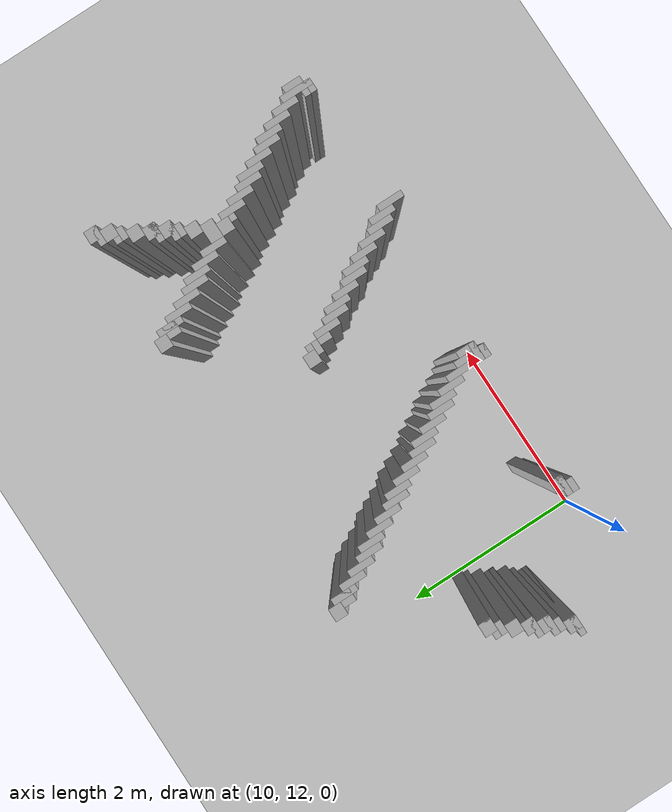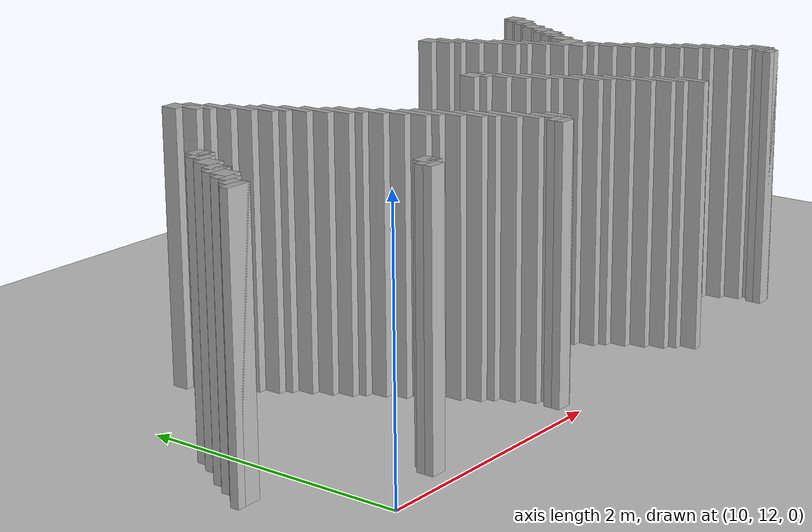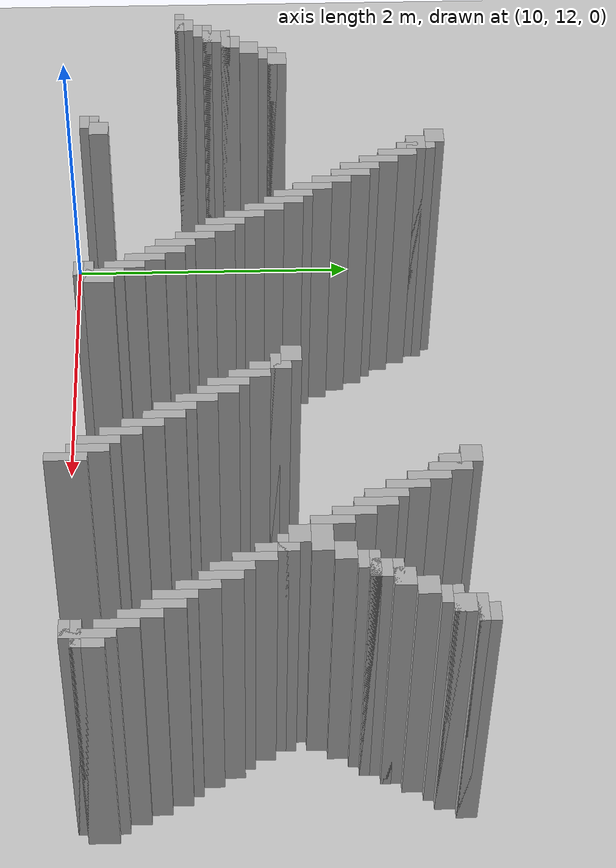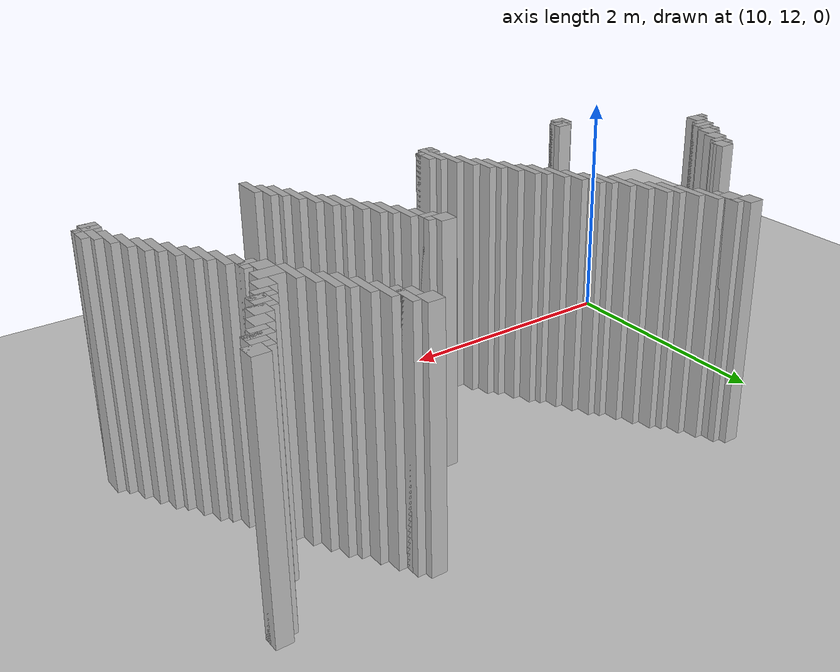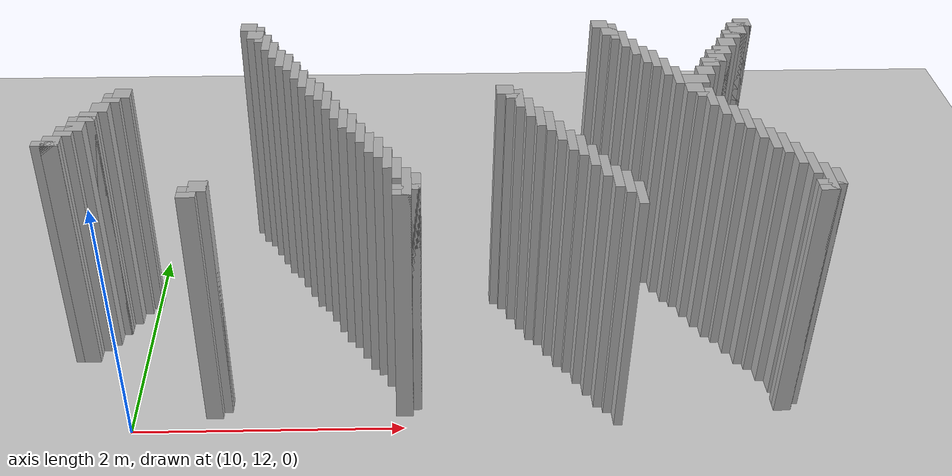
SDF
<sdf version="1.6">
 <world name="slam_world">
  <model name="ground_plane">
   <static>true</static>
   <link name="link">
    <collision name="collision">
     <geometry><plane><normal>0 0 1</normal><size>100 100</size></plane></geometry>
    </collision>
    <visual name="visual">
     <geometry><plane><normal>0 0 1</normal><size>100 100</size></plane></geometry>
     <material>
      <ambient>0.8 0.8 0.8 1</ambient>
      <diffuse>0.8 0.8 0.8 1</diffuse>
      <specular>0.8 0.8 0.8 1</specular>
     </material>
    </visual>
   </link>
  </model>
  <model name="wall_927">
   <static>true</static>
   <pose>10.787234042553191 14.489361702127658 1.0 0 0 0</pose>
   <link name="link">
    <collision name="collision">
     <geometry><box><size>0.1276595744680851 0.1276595744680851 2.0</size></box></geometry>
    </collision>
    <visual name="visual">
     <geometry><box><size>0.1276595744680851 0.1276595744680851 2.0</size></box></geometry>
     <material><ambient>0.5 0.5 0.5 1</ambient><diffuse>0.7 0.7 0.7 1</diffuse></material>
    </visual>
   </link>
  </model>
  <model name="wall_928">
   <static>true</static>
   <pose>13.595744680851062 14.489361702127658 1.0 0 0 0</pose>
   <link name="link">
    <collision name="collision">
     <geometry><box><size>0.1276595744680851 0.1276595744680851 2.0</size></box></geometry>
    </collision>
    <visual name="visual">
     <geometry><box><size>0.1276595744680851 0.1276595744680851 2.0</size></box></geometry>
     <material><ambient>0.5 0.5 0.5 1</ambient><diffuse>0.7 0.7 0.7 1</diffuse></material>
    </visual>
   </link>
  </model>
  <model name="wall_929">
   <static>true</static>
   <pose>14.744680851063828 14.489361702127658 1.0 0 0 0</pose>
   <link name="link">
    <collision name="collision">
     <geometry><box><size>0.1276595744680851 0.1276595744680851 2.0</size></box></geometry>
    </collision>
    <visual name="visual">
     <geometry><box><size>0.1276595744680851 0.1276595744680851 2.0</size></box></geometry>
     <material><ambient>0.5 0.5 0.5 1</ambient><diffuse>0.7 0.7 0.7 1</diffuse></material>
    </visual>
   </link>
  </model>
  <model name="wall_934">
   <static>true</static>
   <pose>10.882978723404255 14.361702127659573 1.0 0 0 0</pose>
   <link name="link">
    <collision name="collision">
     <geometry><box><size>0.06382978723404255 0.2553191489361702 2.0</size></box></geometry>
    </collision>
    <visual name="visual">
     <geometry><box><size>0.06382978723404255 0.2553191489361702 2.0</size></box></geometry>
     <material><ambient>0.5 0.5 0.5 1</ambient><diffuse>0.7 0.7 0.7 1</diffuse></material>
    </visual>
   </link>
  </model>
  <model name="wall_935">
   <static>true</static>
   <pose>13.691489361702127 14.361702127659573 1.0 0 0 0</pose>
   <link name="link">
    <collision name="collision">
     <geometry><box><size>0.06382978723404255 0.2553191489361702 2.0</size></box></geometry>
    </collision>
    <visual name="visual">
     <geometry><box><size>0.06382978723404255 0.2553191489361702 2.0</size></box></geometry>
     <material><ambient>0.5 0.5 0.5 1</ambient><diffuse>0.7 0.7 0.7 1</diffuse></material>
    </visual>
   </link>
  </model>
  <model name="wall_936">
   <static>true</static>
   <pose>14.712765957446807 14.457446808510637 1.0 0 0 0</pose>
   <link name="link">
    <collision name="collision">
     <geometry><box><size>0.19148936170212766 0.06382978723404255 2.0</size></box></geometry>
    </collision>
    <visual name="visual">
     <geometry><box><size>0.19148936170212766 0.06382978723404255 2.0</size></box></geometry>
     <material><ambient>0.5 0.5 0.5 1</ambient><diffuse>0.7 0.7 0.7 1</diffuse></material>
    </visual>
   </link>
  </model>
  <model name="wall_941">
   <static>true</static>
   <pose>10.851063829787233 14.361702127659573 1.0 0 0 0</pose>
   <link name="link">
    <collision name="collision">
     <geometry><box><size>0.1276595744680851 0.1276595744680851 2.0</size></box></geometry>
    </collision>
    <visual name="visual">
     <geometry><box><size>0.1276595744680851 0.1276595744680851 2.0</size></box></geometry>
     <material><ambient>0.5 0.5 0.5 1</ambient><diffuse>0.7 0.7 0.7 1</diffuse></material>
    </visual>
   </link>
  </model>
  <model name="wall_942">
   <static>true</static>
   <pose>13.659574468085106 14.361702127659573 1.0 0 0 0</pose>
   <link name="link">
    <collision name="collision">
     <geometry><box><size>0.1276595744680851 0.1276595744680851 2.0</size></box></geometry>
    </collision>
    <visual name="visual">
     <geometry><box><size>0.1276595744680851 0.1276595744680851 2.0</size></box></geometry>
     <material><ambient>0.5 0.5 0.5 1</ambient><diffuse>0.7 0.7 0.7 1</diffuse></material>
    </visual>
   </link>
  </model>
  <model name="wall_943">
   <static>true</static>
   <pose>14.680851063829786 14.361702127659573 1.0 0 0 0</pose>
   <link name="link">
    <collision name="collision">
     <geometry><box><size>0.1276595744680851 0.1276595744680851 2.0</size></box></geometry>
    </collision>
    <visual name="visual">
     <geometry><box><size>0.1276595744680851 0.1276595744680851 2.0</size></box></geometry>
     <material><ambient>0.5 0.5 0.5 1</ambient><diffuse>0.7 0.7 0.7 1</diffuse></material>
    </visual>
   </link>
  </model>
  <model name="wall_948">
   <static>true</static>
   <pose>10.946808510638297 14.234042553191488 1.0 0 0 0</pose>
   <link name="link">
    <collision name="collision">
     <geometry><box><size>0.06382978723404255 0.2553191489361702 2.0</size></box></geometry>
    </collision>
    <visual name="visual">
     <geometry><box><size>0.06382978723404255 0.2553191489361702 2.0</size></box></geometry>
     <material><ambient>0.5 0.5 0.5 1</ambient><diffuse>0.7 0.7 0.7 1</diffuse></material>
    </visual>
   </link>
  </model>
  <model name="wall_949">
   <static>true</static>
   <pose>13.755319148936168 14.234042553191488 1.0 0 0 0</pose>
   <link name="link">
    <collision name="collision">
     <geometry><box><size>0.06382978723404255 0.2553191489361702 2.0</size></box></geometry>
    </collision>
    <visual name="visual">
     <geometry><box><size>0.06382978723404255 0.2553191489361702 2.0</size></box></geometry>
     <material><ambient>0.5 0.5 0.5 1</ambient><diffuse>0.7 0.7 0.7 1</diffuse></material>
    </visual>
   </link>
  </model>
  <model name="wall_950">
   <static>true</static>
   <pose>14.648936170212766 14.329787234042552 1.0 0 0 0</pose>
   <link name="link">
    <collision name="collision">
     <geometry><box><size>0.19148936170212766 0.06382978723404255 2.0</size></box></geometry>
    </collision>
    <visual name="visual">
     <geometry><box><size>0.19148936170212766 0.06382978723404255 2.0</size></box></geometry>
     <material><ambient>0.5 0.5 0.5 1</ambient><diffuse>0.7 0.7 0.7 1</diffuse></material>
    </visual>
   </link>
  </model>
  <model name="wall_954">
   <static>true</static>
   <pose>14.617021276595743 14.265957446808509 1.0 0 0 0</pose>
   <link name="link">
    <collision name="collision">
     <geometry><box><size>0.1276595744680851 0.06382978723404255 2.0</size></box></geometry>
    </collision>
    <visual name="visual">
     <geometry><box><size>0.1276595744680851 0.06382978723404255 2.0</size></box></geometry>
     <material><ambient>0.5 0.5 0.5 1</ambient><diffuse>0.7 0.7 0.7 1</diffuse></material>
    </visual>
   </link>
  </model>
  <model name="wall_959">
   <static>true</static>
   <pose>11.01063829787234 14.106382978723403 1.0 0 0 0</pose>
   <link name="link">
    <collision name="collision">
     <geometry><box><size>0.06382978723404255 0.2553191489361702 2.0</size></box></geometry>
    </collision>
    <visual name="visual">
     <geometry><box><size>0.06382978723404255 0.2553191489361702 2.0</size></box></geometry>
     <material><ambient>0.5 0.5 0.5 1</ambient><diffuse>0.7 0.7 0.7 1</diffuse></material>
    </visual>
   </link>
  </model>
  <model name="wall_960">
   <static>true</static>
   <pose>13.819148936170212 14.106382978723403 1.0 0 0 0</pose>
   <link name="link">
    <collision name="collision">
     <geometry><box><size>0.06382978723404255 0.2553191489361702 2.0</size></box></geometry>
    </collision>
    <visual name="visual">
     <geometry><box><size>0.06382978723404255 0.2553191489361702 2.0</size></box></geometry>
     <material><ambient>0.5 0.5 0.5 1</ambient><diffuse>0.7 0.7 0.7 1</diffuse></material>
    </visual>
   </link>
  </model>
  <model name="wall_961">
   <static>true</static>
   <pose>14.553191489361701 14.170212765957446 1.0 0 0 0</pose>
   <link name="link">
    <collision name="collision">
     <geometry><box><size>0.1276595744680851 0.1276595744680851 2.0</size></box></geometry>
    </collision>
    <visual name="visual">
     <geometry><box><size>0.1276595744680851 0.1276595744680851 2.0</size></box></geometry>
     <material><ambient>0.5 0.5 0.5 1</ambient><diffuse>0.7 0.7 0.7 1</diffuse></material>
    </visual>
   </link>
  </model>
  <model name="wall_966">
   <static>true</static>
   <pose>11.074468085106382 13.978723404255318 1.0 0 0 0</pose>
   <link name="link">
    <collision name="collision">
     <geometry><box><size>0.06382978723404255 0.2553191489361702 2.0</size></box></geometry>
    </collision>
    <visual name="visual">
     <geometry><box><size>0.06382978723404255 0.2553191489361702 2.0</size></box></geometry>
     <material><ambient>0.5 0.5 0.5 1</ambient><diffuse>0.7 0.7 0.7 1</diffuse></material>
    </visual>
   </link>
  </model>
  <model name="wall_967">
   <static>true</static>
   <pose>13.882978723404253 13.978723404255318 1.0 0 0 0</pose>
   <link name="link">
    <collision name="collision">
     <geometry><box><size>0.06382978723404255 0.2553191489361702 2.0</size></box></geometry>
    </collision>
    <visual name="visual">
     <geometry><box><size>0.06382978723404255 0.2553191489361702 2.0</size></box></geometry>
     <material><ambient>0.5 0.5 0.5 1</ambient><diffuse>0.7 0.7 0.7 1</diffuse></material>
    </visual>
   </link>
  </model>
  <model name="wall_968">
   <static>true</static>
   <pose>14.489361702127658 14.042553191489361 1.0 0 0 0</pose>
   <link name="link">
    <collision name="collision">
     <geometry><box><size>0.1276595744680851 0.1276595744680851 2.0</size></box></geometry>
    </collision>
    <visual name="visual">
     <geometry><box><size>0.1276595744680851 0.1276595744680851 2.0</size></box></geometry>
     <material><ambient>0.5 0.5 0.5 1</ambient><diffuse>0.7 0.7 0.7 1</diffuse></material>
    </visual>
   </link>
  </model>
  <model name="wall_973">
   <static>true</static>
   <pose>11.138297872340425 13.914893617021276 1.0 0 0 0</pose>
   <link name="link">
    <collision name="collision">
     <geometry><box><size>0.06382978723404255 0.2553191489361702 2.0</size></box></geometry>
    </collision>
    <visual name="visual">
     <geometry><box><size>0.06382978723404255 0.2553191489361702 2.0</size></box></geometry>
     <material><ambient>0.5 0.5 0.5 1</ambient><diffuse>0.7 0.7 0.7 1</diffuse></material>
    </visual>
   </link>
  </model>
  <model name="wall_974">
   <static>true</static>
   <pose>13.946808510638297 13.914893617021276 1.0 0 0 0</pose>
   <link name="link">
    <collision name="collision">
     <geometry><box><size>0.06382978723404255 0.2553191489361702 2.0</size></box></geometry>
    </collision>
    <visual name="visual">
     <geometry><box><size>0.06382978723404255 0.2553191489361702 2.0</size></box></geometry>
     <material><ambient>0.5 0.5 0.5 1</ambient><diffuse>0.7 0.7 0.7 1</diffuse></material>
    </visual>
   </link>
  </model>
  <model name="wall_975">
   <static>true</static>
   <pose>14.457446808510637 14.010638297872338 1.0 0 0 0</pose>
   <link name="link">
    <collision name="collision">
     <geometry><box><size>0.19148936170212766 0.06382978723404255 2.0</size></box></geometry>
    </collision>
    <visual name="visual">
     <geometry><box><size>0.19148936170212766 0.06382978723404255 2.0</size></box></geometry>
     <material><ambient>0.5 0.5 0.5 1</ambient><diffuse>0.7 0.7 0.7 1</diffuse></material>
    </visual>
   </link>
  </model>
  <model name="wall_979">
   <static>true</static>
   <pose>14.425531914893616 13.914893617021276 1.0 0 0 0</pose>
   <link name="link">
    <collision name="collision">
     <geometry><box><size>0.1276595744680851 0.1276595744680851 2.0</size></box></geometry>
    </collision>
    <visual name="visual">
     <geometry><box><size>0.1276595744680851 0.1276595744680851 2.0</size></box></geometry>
     <material><ambient>0.5 0.5 0.5 1</ambient><diffuse>0.7 0.7 0.7 1</diffuse></material>
    </visual>
   </link>
  </model>
  <model name="wall_984">
   <static>true</static>
   <pose>11.202127659574467 13.787234042553191 1.0 0 0 0</pose>
   <link name="link">
    <collision name="collision">
     <geometry><box><size>0.06382978723404255 0.2553191489361702 2.0</size></box></geometry>
    </collision>
    <visual name="visual">
     <geometry><box><size>0.06382978723404255 0.2553191489361702 2.0</size></box></geometry>
     <material><ambient>0.5 0.5 0.5 1</ambient><diffuse>0.7 0.7 0.7 1</diffuse></material>
    </visual>
   </link>
  </model>
  <model name="wall_985">
   <static>true</static>
   <pose>14.010638297872338 13.787234042553191 1.0 0 0 0</pose>
   <link name="link">
    <collision name="collision">
     <geometry><box><size>0.06382978723404255 0.2553191489361702 2.0</size></box></geometry>
    </collision>
    <visual name="visual">
     <geometry><box><size>0.06382978723404255 0.2553191489361702 2.0</size></box></geometry>
     <material><ambient>0.5 0.5 0.5 1</ambient><diffuse>0.7 0.7 0.7 1</diffuse></material>
    </visual>
   </link>
  </model>
  <model name="wall_986">
   <static>true</static>
   <pose>14.393617021276595 13.882978723404253 1.0 0 0 0</pose>
   <link name="link">
    <collision name="collision">
     <geometry><box><size>0.19148936170212766 0.06382978723404255 2.0</size></box></geometry>
    </collision>
    <visual name="visual">
     <geometry><box><size>0.19148936170212766 0.06382978723404255 2.0</size></box></geometry>
     <material><ambient>0.5 0.5 0.5 1</ambient><diffuse>0.7 0.7 0.7 1</diffuse></material>
    </visual>
   </link>
  </model>
  <model name="wall_990">
   <static>true</static>
   <pose>14.361702127659573 13.819148936170212 1.0 0 0 0</pose>
   <link name="link">
    <collision name="collision">
     <geometry><box><size>0.1276595744680851 0.06382978723404255 2.0</size></box></geometry>
    </collision>
    <visual name="visual">
     <geometry><box><size>0.1276595744680851 0.06382978723404255 2.0</size></box></geometry>
     <material><ambient>0.5 0.5 0.5 1</ambient><diffuse>0.7 0.7 0.7 1</diffuse></material>
    </visual>
   </link>
  </model>
  <model name="wall_995">
   <static>true</static>
   <pose>11.26595744680851 13.659574468085106 1.0 0 0 0</pose>
   <link name="link">
    <collision name="collision">
     <geometry><box><size>0.06382978723404255 0.2553191489361702 2.0</size></box></geometry>
    </collision>
    <visual name="visual">
     <geometry><box><size>0.06382978723404255 0.2553191489361702 2.0</size></box></geometry>
     <material><ambient>0.5 0.5 0.5 1</ambient><diffuse>0.7 0.7 0.7 1</diffuse></material>
    </visual>
   </link>
  </model>
  <model name="wall_996">
   <static>true</static>
   <pose>14.074468085106382 13.659574468085106 1.0 0 0 0</pose>
   <link name="link">
    <collision name="collision">
     <geometry><box><size>0.06382978723404255 0.2553191489361702 2.0</size></box></geometry>
    </collision>
    <visual name="visual">
     <geometry><box><size>0.06382978723404255 0.2553191489361702 2.0</size></box></geometry>
     <material><ambient>0.5 0.5 0.5 1</ambient><diffuse>0.7 0.7 0.7 1</diffuse></material>
    </visual>
   </link>
  </model>
  <model name="wall_997">
   <static>true</static>
   <pose>14.297872340425531 13.723404255319148 1.0 0 0 0</pose>
   <link name="link">
    <collision name="collision">
     <geometry><box><size>0.1276595744680851 0.1276595744680851 2.0</size></box></geometry>
    </collision>
    <visual name="visual">
     <geometry><box><size>0.1276595744680851 0.1276595744680851 2.0</size></box></geometry>
     <material><ambient>0.5 0.5 0.5 1</ambient><diffuse>0.7 0.7 0.7 1</diffuse></material>
    </visual>
   </link>
  </model>
  <model name="wall_1002">
   <static>true</static>
   <pose>11.329787234042552 13.53191489361702 1.0 0 0 0</pose>
   <link name="link">
    <collision name="collision">
     <geometry><box><size>0.06382978723404255 0.2553191489361702 2.0</size></box></geometry>
    </collision>
    <visual name="visual">
     <geometry><box><size>0.06382978723404255 0.2553191489361702 2.0</size></box></geometry>
     <material><ambient>0.5 0.5 0.5 1</ambient><diffuse>0.7 0.7 0.7 1</diffuse></material>
    </visual>
   </link>
  </model>
  <model name="wall_1003">
   <static>true</static>
   <pose>14.202127659574467 13.595744680851062 1.0 0 0 0</pose>
   <link name="link">
    <collision name="collision">
     <geometry><box><size>0.19148936170212766 0.1276595744680851 2.0</size></box></geometry>
    </collision>
    <visual name="visual">
     <geometry><box><size>0.19148936170212766 0.1276595744680851 2.0</size></box></geometry>
     <material><ambient>0.5 0.5 0.5 1</ambient><diffuse>0.7 0.7 0.7 1</diffuse></material>
    </visual>
   </link>
  </model>
  <model name="wall_1009">
   <static>true</static>
   <pose>11.393617021276595 13.468085106382977 1.0 0 0 0</pose>
   <link name="link">
    <collision name="collision">
     <geometry><box><size>0.06382978723404255 0.2553191489361702 2.0</size></box></geometry>
    </collision>
    <visual name="visual">
     <geometry><box><size>0.06382978723404255 0.2553191489361702 2.0</size></box></geometry>
     <material><ambient>0.5 0.5 0.5 1</ambient><diffuse>0.7 0.7 0.7 1</diffuse></material>
    </visual>
   </link>
  </model>
  <model name="wall_1014">
   <static>true</static>
   <pose>9.957446808510637 13.468085106382977 1.0 0 0 0</pose>
   <link name="link">
    <collision name="collision">
     <geometry><box><size>0.1276595744680851 0.1276595744680851 2.0</size></box></geometry>
    </collision>
    <visual name="visual">
     <geometry><box><size>0.1276595744680851 0.1276595744680851 2.0</size></box></geometry>
     <material><ambient>0.5 0.5 0.5 1</ambient><diffuse>0.7 0.7 0.7 1</diffuse></material>
    </visual>
   </link>
  </model>
  <model name="wall_1015">
   <static>true</static>
   <pose>12.76595744680851 13.468085106382977 1.0 0 0 0</pose>
   <link name="link">
    <collision name="collision">
     <geometry><box><size>0.1276595744680851 0.1276595744680851 2.0</size></box></geometry>
    </collision>
    <visual name="visual">
     <geometry><box><size>0.1276595744680851 0.1276595744680851 2.0</size></box></geometry>
     <material><ambient>0.5 0.5 0.5 1</ambient><diffuse>0.7 0.7 0.7 1</diffuse></material>
    </visual>
   </link>
  </model>
  <model name="wall_1016">
   <static>true</static>
   <pose>14.170212765957446 13.468085106382977 1.0 0 0 0</pose>
   <link name="link">
    <collision name="collision">
     <geometry><box><size>0.1276595744680851 0.1276595744680851 2.0</size></box></geometry>
    </collision>
    <visual name="visual">
     <geometry><box><size>0.1276595744680851 0.1276595744680851 2.0</size></box></geometry>
     <material><ambient>0.5 0.5 0.5 1</ambient><diffuse>0.7 0.7 0.7 1</diffuse></material>
    </visual>
   </link>
  </model>
  <model name="wall_1022">
   <static>true</static>
   <pose>9.925531914893616 13.436170212765957 1.0 0 0 0</pose>
   <link name="link">
    <collision name="collision">
     <geometry><box><size>0.19148936170212766 0.06382978723404255 2.0</size></box></geometry>
    </collision>
    <visual name="visual">
     <geometry><box><size>0.19148936170212766 0.06382978723404255 2.0</size></box></geometry>
     <material><ambient>0.5 0.5 0.5 1</ambient><diffuse>0.7 0.7 0.7 1</diffuse></material>
    </visual>
   </link>
  </model>
  <model name="wall_1023">
   <static>true</static>
   <pose>11.457446808510637 13.340425531914892 1.0 0 0 0</pose>
   <link name="link">
    <collision name="collision">
     <geometry><box><size>0.06382978723404255 0.2553191489361702 2.0</size></box></geometry>
    </collision>
    <visual name="visual">
     <geometry><box><size>0.06382978723404255 0.2553191489361702 2.0</size></box></geometry>
     <material><ambient>0.5 0.5 0.5 1</ambient><diffuse>0.7 0.7 0.7 1</diffuse></material>
    </visual>
   </link>
  </model>
  <model name="wall_1024">
   <static>true</static>
   <pose>12.861702127659573 13.340425531914892 1.0 0 0 0</pose>
   <link name="link">
    <collision name="collision">
     <geometry><box><size>0.06382978723404255 0.2553191489361702 2.0</size></box></geometry>
    </collision>
    <visual name="visual">
     <geometry><box><size>0.06382978723404255 0.2553191489361702 2.0</size></box></geometry>
     <material><ambient>0.5 0.5 0.5 1</ambient><diffuse>0.7 0.7 0.7 1</diffuse></material>
    </visual>
   </link>
  </model>
  <model name="wall_1025">
   <static>true</static>
   <pose>14.265957446808509 13.340425531914892 1.0 0 0 0</pose>
   <link name="link">
    <collision name="collision">
     <geometry><box><size>0.06382978723404255 0.2553191489361702 2.0</size></box></geometry>
    </collision>
    <visual name="visual">
     <geometry><box><size>0.06382978723404255 0.2553191489361702 2.0</size></box></geometry>
     <material><ambient>0.5 0.5 0.5 1</ambient><diffuse>0.7 0.7 0.7 1</diffuse></material>
    </visual>
   </link>
  </model>
  <model name="wall_1030">
   <static>true</static>
   <pose>9.893617021276595 13.372340425531913 1.0 0 0 0</pose>
   <link name="link">
    <collision name="collision">
     <geometry><box><size>0.1276595744680851 0.06382978723404255 2.0</size></box></geometry>
    </collision>
    <visual name="visual">
     <geometry><box><size>0.1276595744680851 0.06382978723404255 2.0</size></box></geometry>
     <material><ambient>0.5 0.5 0.5 1</ambient><diffuse>0.7 0.7 0.7 1</diffuse></material>
    </visual>
   </link>
  </model>
  <model name="wall_1031">
   <static>true</static>
   <pose>12.829787234042552 13.372340425531913 1.0 0 0 0</pose>
   <link name="link">
    <collision name="collision">
     <geometry><box><size>0.1276595744680851 0.06382978723404255 2.0</size></box></geometry>
    </collision>
    <visual name="visual">
     <geometry><box><size>0.1276595744680851 0.06382978723404255 2.0</size></box></geometry>
     <material><ambient>0.5 0.5 0.5 1</ambient><diffuse>0.7 0.7 0.7 1</diffuse></material>
    </visual>
   </link>
  </model>
  <model name="wall_1032">
   <static>true</static>
   <pose>14.234042553191488 13.372340425531913 1.0 0 0 0</pose>
   <link name="link">
    <collision name="collision">
     <geometry><box><size>0.1276595744680851 0.06382978723404255 2.0</size></box></geometry>
    </collision>
    <visual name="visual">
     <geometry><box><size>0.1276595744680851 0.06382978723404255 2.0</size></box></geometry>
     <material><ambient>0.5 0.5 0.5 1</ambient><diffuse>0.7 0.7 0.7 1</diffuse></material>
    </visual>
   </link>
  </model>
  <model name="wall_1039">
   <static>true</static>
   <pose>9.829787234042552 13.27659574468085 1.0 0 0 0</pose>
   <link name="link">
    <collision name="collision">
     <geometry><box><size>0.1276595744680851 0.1276595744680851 2.0</size></box></geometry>
    </collision>
    <visual name="visual">
     <geometry><box><size>0.1276595744680851 0.1276595744680851 2.0</size></box></geometry>
     <material><ambient>0.5 0.5 0.5 1</ambient><diffuse>0.7 0.7 0.7 1</diffuse></material>
    </visual>
   </link>
  </model>
  <model name="wall_1040">
   <static>true</static>
   <pose>11.52127659574468 13.212765957446807 1.0 0 0 0</pose>
   <link name="link">
    <collision name="collision">
     <geometry><box><size>0.06382978723404255 0.2553191489361702 2.0</size></box></geometry>
    </collision>
    <visual name="visual">
     <geometry><box><size>0.06382978723404255 0.2553191489361702 2.0</size></box></geometry>
     <material><ambient>0.5 0.5 0.5 1</ambient><diffuse>0.7 0.7 0.7 1</diffuse></material>
    </visual>
   </link>
  </model>
  <model name="wall_1041">
   <static>true</static>
   <pose>12.925531914893616 13.212765957446807 1.0 0 0 0</pose>
   <link name="link">
    <collision name="collision">
     <geometry><box><size>0.06382978723404255 0.2553191489361702 2.0</size></box></geometry>
    </collision>
    <visual name="visual">
     <geometry><box><size>0.06382978723404255 0.2553191489361702 2.0</size></box></geometry>
     <material><ambient>0.5 0.5 0.5 1</ambient><diffuse>0.7 0.7 0.7 1</diffuse></material>
    </visual>
   </link>
  </model>
  <model name="wall_1042">
   <static>true</static>
   <pose>14.329787234042552 13.212765957446807 1.0 0 0 0</pose>
   <link name="link">
    <collision name="collision">
     <geometry><box><size>0.06382978723404255 0.2553191489361702 2.0</size></box></geometry>
    </collision>
    <visual name="visual">
     <geometry><box><size>0.06382978723404255 0.2553191489361702 2.0</size></box></geometry>
     <material><ambient>0.5 0.5 0.5 1</ambient><diffuse>0.7 0.7 0.7 1</diffuse></material>
    </visual>
   </link>
  </model>
  <model name="wall_1049">
   <static>true</static>
   <pose>9.76595744680851 13.148936170212766 1.0 0 0 0</pose>
   <link name="link">
    <collision name="collision">
     <geometry><box><size>0.1276595744680851 0.1276595744680851 2.0</size></box></geometry>
    </collision>
    <visual name="visual">
     <geometry><box><size>0.1276595744680851 0.1276595744680851 2.0</size></box></geometry>
     <material><ambient>0.5 0.5 0.5 1</ambient><diffuse>0.7 0.7 0.7 1</diffuse></material>
    </visual>
   </link>
  </model>
  <model name="wall_1050">
   <static>true</static>
   <pose>11.585106382978722 13.085106382978722 1.0 0 0 0</pose>
   <link name="link">
    <collision name="collision">
     <geometry><box><size>0.06382978723404255 0.2553191489361702 2.0</size></box></geometry>
    </collision>
    <visual name="visual">
     <geometry><box><size>0.06382978723404255 0.2553191489361702 2.0</size></box></geometry>
     <material><ambient>0.5 0.5 0.5 1</ambient><diffuse>0.7 0.7 0.7 1</diffuse></material>
    </visual>
   </link>
  </model>
  <model name="wall_1051">
   <static>true</static>
   <pose>12.989361702127658 13.085106382978722 1.0 0 0 0</pose>
   <link name="link">
    <collision name="collision">
     <geometry><box><size>0.06382978723404255 0.2553191489361702 2.0</size></box></geometry>
    </collision>
    <visual name="visual">
     <geometry><box><size>0.06382978723404255 0.2553191489361702 2.0</size></box></geometry>
     <material><ambient>0.5 0.5 0.5 1</ambient><diffuse>0.7 0.7 0.7 1</diffuse></material>
    </visual>
   </link>
  </model>
  <model name="wall_1052">
   <static>true</static>
   <pose>14.393617021276595 13.085106382978722 1.0 0 0 0</pose>
   <link name="link">
    <collision name="collision">
     <geometry><box><size>0.06382978723404255 0.2553191489361702 2.0</size></box></geometry>
    </collision>
    <visual name="visual">
     <geometry><box><size>0.06382978723404255 0.2553191489361702 2.0</size></box></geometry>
     <material><ambient>0.5 0.5 0.5 1</ambient><diffuse>0.7 0.7 0.7 1</diffuse></material>
    </visual>
   </link>
  </model>
  <model name="wall_1059">
   <static>true</static>
   <pose>9.734042553191488 13.117021276595743 1.0 0 0 0</pose>
   <link name="link">
    <collision name="collision">
     <geometry><box><size>0.19148936170212766 0.06382978723404255 2.0</size></box></geometry>
    </collision>
    <visual name="visual">
     <geometry><box><size>0.19148936170212766 0.06382978723404255 2.0</size></box></geometry>
     <material><ambient>0.5 0.5 0.5 1</ambient><diffuse>0.7 0.7 0.7 1</diffuse></material>
    </visual>
   </link>
  </model>
  <model name="wall_1060">
   <static>true</static>
   <pose>11.648936170212766 13.02127659574468 1.0 0 0 0</pose>
   <link name="link">
    <collision name="collision">
     <geometry><box><size>0.06382978723404255 0.2553191489361702 2.0</size></box></geometry>
    </collision>
    <visual name="visual">
     <geometry><box><size>0.06382978723404255 0.2553191489361702 2.0</size></box></geometry>
     <material><ambient>0.5 0.5 0.5 1</ambient><diffuse>0.7 0.7 0.7 1</diffuse></material>
    </visual>
   </link>
  </model>
  <model name="wall_1061">
   <static>true</static>
   <pose>13.053191489361701 13.02127659574468 1.0 0 0 0</pose>
   <link name="link">
    <collision name="collision">
     <geometry><box><size>0.06382978723404255 0.2553191489361702 2.0</size></box></geometry>
    </collision>
    <visual name="visual">
     <geometry><box><size>0.06382978723404255 0.2553191489361702 2.0</size></box></geometry>
     <material><ambient>0.5 0.5 0.5 1</ambient><diffuse>0.7 0.7 0.7 1</diffuse></material>
    </visual>
   </link>
  </model>
  <model name="wall_1062">
   <static>true</static>
   <pose>14.457446808510637 13.02127659574468 1.0 0 0 0</pose>
   <link name="link">
    <collision name="collision">
     <geometry><box><size>0.06382978723404255 0.2553191489361702 2.0</size></box></geometry>
    </collision>
    <visual name="visual">
     <geometry><box><size>0.06382978723404255 0.2553191489361702 2.0</size></box></geometry>
     <material><ambient>0.5 0.5 0.5 1</ambient><diffuse>0.7 0.7 0.7 1</diffuse></material>
    </visual>
   </link>
  </model>
  <model name="wall_1066">
   <static>true</static>
   <pose>9.702127659574467 13.02127659574468 1.0 0 0 0</pose>
   <link name="link">
    <collision name="collision">
     <geometry><box><size>0.1276595744680851 0.1276595744680851 2.0</size></box></geometry>
    </collision>
    <visual name="visual">
     <geometry><box><size>0.1276595744680851 0.1276595744680851 2.0</size></box></geometry>
     <material><ambient>0.5 0.5 0.5 1</ambient><diffuse>0.7 0.7 0.7 1</diffuse></material>
    </visual>
   </link>
  </model>
  <model name="wall_1073">
   <static>true</static>
   <pose>9.670212765957446 12.989361702127658 1.0 0 0 0</pose>
   <link name="link">
    <collision name="collision">
     <geometry><box><size>0.19148936170212766 0.06382978723404255 2.0</size></box></geometry>
    </collision>
    <visual name="visual">
     <geometry><box><size>0.19148936170212766 0.06382978723404255 2.0</size></box></geometry>
     <material><ambient>0.5 0.5 0.5 1</ambient><diffuse>0.7 0.7 0.7 1</diffuse></material>
    </visual>
   </link>
  </model>
  <model name="wall_1074">
   <static>true</static>
   <pose>11.712765957446807 12.893617021276595 1.0 0 0 0</pose>
   <link name="link">
    <collision name="collision">
     <geometry><box><size>0.06382978723404255 0.2553191489361702 2.0</size></box></geometry>
    </collision>
    <visual name="visual">
     <geometry><box><size>0.06382978723404255 0.2553191489361702 2.0</size></box></geometry>
     <material><ambient>0.5 0.5 0.5 1</ambient><diffuse>0.7 0.7 0.7 1</diffuse></material>
    </visual>
   </link>
  </model>
  <model name="wall_1075">
   <static>true</static>
   <pose>13.117021276595743 12.893617021276595 1.0 0 0 0</pose>
   <link name="link">
    <collision name="collision">
     <geometry><box><size>0.06382978723404255 0.2553191489361702 2.0</size></box></geometry>
    </collision>
    <visual name="visual">
     <geometry><box><size>0.06382978723404255 0.2553191489361702 2.0</size></box></geometry>
     <material><ambient>0.5 0.5 0.5 1</ambient><diffuse>0.7 0.7 0.7 1</diffuse></material>
    </visual>
   </link>
  </model>
  <model name="wall_1076">
   <static>true</static>
   <pose>14.52127659574468 12.893617021276595 1.0 0 0 0</pose>
   <link name="link">
    <collision name="collision">
     <geometry><box><size>0.06382978723404255 0.2553191489361702 2.0</size></box></geometry>
    </collision>
    <visual name="visual">
     <geometry><box><size>0.06382978723404255 0.2553191489361702 2.0</size></box></geometry>
     <material><ambient>0.5 0.5 0.5 1</ambient><diffuse>0.7 0.7 0.7 1</diffuse></material>
    </visual>
   </link>
  </model>
  <model name="wall_1078">
   <static>true</static>
   <pose>9.638297872340425 12.925531914893616 1.0 0 0 0</pose>
   <link name="link">
    <collision name="collision">
     <geometry><box><size>0.1276595744680851 0.06382978723404255 2.0</size></box></geometry>
    </collision>
    <visual name="visual">
     <geometry><box><size>0.1276595744680851 0.06382978723404255 2.0</size></box></geometry>
     <material><ambient>0.5 0.5 0.5 1</ambient><diffuse>0.7 0.7 0.7 1</diffuse></material>
    </visual>
   </link>
  </model>
  <model name="wall_1085">
   <static>true</static>
   <pose>9.574468085106382 12.829787234042552 1.0 0 0 0</pose>
   <link name="link">
    <collision name="collision">
     <geometry><box><size>0.1276595744680851 0.1276595744680851 2.0</size></box></geometry>
    </collision>
    <visual name="visual">
     <geometry><box><size>0.1276595744680851 0.1276595744680851 2.0</size></box></geometry>
     <material><ambient>0.5 0.5 0.5 1</ambient><diffuse>0.7 0.7 0.7 1</diffuse></material>
    </visual>
   </link>
  </model>
  <model name="wall_1086">
   <static>true</static>
   <pose>11.77659574468085 12.76595744680851 1.0 0 0 0</pose>
   <link name="link">
    <collision name="collision">
     <geometry><box><size>0.06382978723404255 0.2553191489361702 2.0</size></box></geometry>
    </collision>
    <visual name="visual">
     <geometry><box><size>0.06382978723404255 0.2553191489361702 2.0</size></box></geometry>
     <material><ambient>0.5 0.5 0.5 1</ambient><diffuse>0.7 0.7 0.7 1</diffuse></material>
    </visual>
   </link>
  </model>
  <model name="wall_1087">
   <static>true</static>
   <pose>13.180851063829786 12.76595744680851 1.0 0 0 0</pose>
   <link name="link">
    <collision name="collision">
     <geometry><box><size>0.06382978723404255 0.2553191489361702 2.0</size></box></geometry>
    </collision>
    <visual name="visual">
     <geometry><box><size>0.06382978723404255 0.2553191489361702 2.0</size></box></geometry>
     <material><ambient>0.5 0.5 0.5 1</ambient><diffuse>0.7 0.7 0.7 1</diffuse></material>
    </visual>
   </link>
  </model>
  <model name="wall_1088">
   <static>true</static>
   <pose>14.585106382978722 12.76595744680851 1.0 0 0 0</pose>
   <link name="link">
    <collision name="collision">
     <geometry><box><size>0.06382978723404255 0.2553191489361702 2.0</size></box></geometry>
    </collision>
    <visual name="visual">
     <geometry><box><size>0.06382978723404255 0.2553191489361702 2.0</size></box></geometry>
     <material><ambient>0.5 0.5 0.5 1</ambient><diffuse>0.7 0.7 0.7 1</diffuse></material>
    </visual>
   </link>
  </model>
  <model name="wall_1095">
   <static>true</static>
   <pose>9.542553191489361 12.797872340425531 1.0 0 0 0</pose>
   <link name="link">
    <collision name="collision">
     <geometry><box><size>0.19148936170212766 0.06382978723404255 2.0</size></box></geometry>
    </collision>
    <visual name="visual">
     <geometry><box><size>0.19148936170212766 0.06382978723404255 2.0</size></box></geometry>
     <material><ambient>0.5 0.5 0.5 1</ambient><diffuse>0.7 0.7 0.7 1</diffuse></material>
    </visual>
   </link>
  </model>
  <model name="wall_1096">
   <static>true</static>
   <pose>11.840425531914892 12.702127659574467 1.0 0 0 0</pose>
   <link name="link">
    <collision name="collision">
     <geometry><box><size>0.06382978723404255 0.2553191489361702 2.0</size></box></geometry>
    </collision>
    <visual name="visual">
     <geometry><box><size>0.06382978723404255 0.2553191489361702 2.0</size></box></geometry>
     <material><ambient>0.5 0.5 0.5 1</ambient><diffuse>0.7 0.7 0.7 1</diffuse></material>
    </visual>
   </link>
  </model>
  <model name="wall_1097">
   <static>true</static>
   <pose>13.244680851063828 12.702127659574467 1.0 0 0 0</pose>
   <link name="link">
    <collision name="collision">
     <geometry><box><size>0.06382978723404255 0.2553191489361702 2.0</size></box></geometry>
    </collision>
    <visual name="visual">
     <geometry><box><size>0.06382978723404255 0.2553191489361702 2.0</size></box></geometry>
     <material><ambient>0.5 0.5 0.5 1</ambient><diffuse>0.7 0.7 0.7 1</diffuse></material>
    </visual>
   </link>
  </model>
  <model name="wall_1098">
   <static>true</static>
   <pose>14.648936170212766 12.702127659574467 1.0 0 0 0</pose>
   <link name="link">
    <collision name="collision">
     <geometry><box><size>0.06382978723404255 0.2553191489361702 2.0</size></box></geometry>
    </collision>
    <visual name="visual">
     <geometry><box><size>0.06382978723404255 0.2553191489361702 2.0</size></box></geometry>
     <material><ambient>0.5 0.5 0.5 1</ambient><diffuse>0.7 0.7 0.7 1</diffuse></material>
    </visual>
   </link>
  </model>
  <model name="wall_1108">
   <static>true</static>
   <pose>11.904255319148936 12.574468085106382 1.0 0 0 0</pose>
   <link name="link">
    <collision name="collision">
     <geometry><box><size>0.06382978723404255 0.2553191489361702 2.0</size></box></geometry>
    </collision>
    <visual name="visual">
     <geometry><box><size>0.06382978723404255 0.2553191489361702 2.0</size></box></geometry>
     <material><ambient>0.5 0.5 0.5 1</ambient><diffuse>0.7 0.7 0.7 1</diffuse></material>
    </visual>
   </link>
  </model>
  <model name="wall_1109">
   <static>true</static>
   <pose>13.308510638297872 12.574468085106382 1.0 0 0 0</pose>
   <link name="link">
    <collision name="collision">
     <geometry><box><size>0.06382978723404255 0.2553191489361702 2.0</size></box></geometry>
    </collision>
    <visual name="visual">
     <geometry><box><size>0.06382978723404255 0.2553191489361702 2.0</size></box></geometry>
     <material><ambient>0.5 0.5 0.5 1</ambient><diffuse>0.7 0.7 0.7 1</diffuse></material>
    </visual>
   </link>
  </model>
  <model name="wall_1110">
   <static>true</static>
   <pose>14.712765957446807 12.574468085106382 1.0 0 0 0</pose>
   <link name="link">
    <collision name="collision">
     <geometry><box><size>0.06382978723404255 0.2553191489361702 2.0</size></box></geometry>
    </collision>
    <visual name="visual">
     <geometry><box><size>0.06382978723404255 0.2553191489361702 2.0</size></box></geometry>
     <material><ambient>0.5 0.5 0.5 1</ambient><diffuse>0.7 0.7 0.7 1</diffuse></material>
    </visual>
   </link>
  </model>
  <model name="wall_1120">
   <static>true</static>
   <pose>11.968085106382977 12.446808510638297 1.0 0 0 0</pose>
   <link name="link">
    <collision name="collision">
     <geometry><box><size>0.06382978723404255 0.2553191489361702 2.0</size></box></geometry>
    </collision>
    <visual name="visual">
     <geometry><box><size>0.06382978723404255 0.2553191489361702 2.0</size></box></geometry>
     <material><ambient>0.5 0.5 0.5 1</ambient><diffuse>0.7 0.7 0.7 1</diffuse></material>
    </visual>
   </link>
  </model>
  <model name="wall_1121">
   <static>true</static>
   <pose>13.372340425531913 12.446808510638297 1.0 0 0 0</pose>
   <link name="link">
    <collision name="collision">
     <geometry><box><size>0.06382978723404255 0.2553191489361702 2.0</size></box></geometry>
    </collision>
    <visual name="visual">
     <geometry><box><size>0.06382978723404255 0.2553191489361702 2.0</size></box></geometry>
     <material><ambient>0.5 0.5 0.5 1</ambient><diffuse>0.7 0.7 0.7 1</diffuse></material>
    </visual>
   </link>
  </model>
  <model name="wall_1122">
   <static>true</static>
   <pose>14.77659574468085 12.446808510638297 1.0 0 0 0</pose>
   <link name="link">
    <collision name="collision">
     <geometry><box><size>0.06382978723404255 0.2553191489361702 2.0</size></box></geometry>
    </collision>
    <visual name="visual">
     <geometry><box><size>0.06382978723404255 0.2553191489361702 2.0</size></box></geometry>
     <material><ambient>0.5 0.5 0.5 1</ambient><diffuse>0.7 0.7 0.7 1</diffuse></material>
    </visual>
   </link>
  </model>
  <model name="wall_1129">
   <static>true</static>
   <pose>12.03191489361702 12.287234042553191 1.0 0 0 0</pose>
   <link name="link">
    <collision name="collision">
     <geometry><box><size>0.06382978723404255 0.3191489361702127 2.0</size></box></geometry>
    </collision>
    <visual name="visual">
     <geometry><box><size>0.06382978723404255 0.3191489361702127 2.0</size></box></geometry>
     <material><ambient>0.5 0.5 0.5 1</ambient><diffuse>0.7 0.7 0.7 1</diffuse></material>
    </visual>
   </link>
  </model>
  <model name="wall_1130">
   <static>true</static>
   <pose>13.436170212765957 12.319148936170212 1.0 0 0 0</pose>
   <link name="link">
    <collision name="collision">
     <geometry><box><size>0.06382978723404255 0.2553191489361702 2.0</size></box></geometry>
    </collision>
    <visual name="visual">
     <geometry><box><size>0.06382978723404255 0.2553191489361702 2.0</size></box></geometry>
     <material><ambient>0.5 0.5 0.5 1</ambient><diffuse>0.7 0.7 0.7 1</diffuse></material>
    </visual>
   </link>
  </model>
  <model name="wall_1131">
   <static>true</static>
   <pose>14.840425531914892 12.287234042553191 1.0 0 0 0</pose>
   <link name="link">
    <collision name="collision">
     <geometry><box><size>0.06382978723404255 0.3191489361702127 2.0</size></box></geometry>
    </collision>
    <visual name="visual">
     <geometry><box><size>0.06382978723404255 0.3191489361702127 2.0</size></box></geometry>
     <material><ambient>0.5 0.5 0.5 1</ambient><diffuse>0.7 0.7 0.7 1</diffuse></material>
    </visual>
   </link>
  </model>
  <model name="wall_1137">
   <static>true</static>
   <pose>12.095744680851062 12.287234042553191 1.0 0 0 0</pose>
   <link name="link">
    <collision name="collision">
     <geometry><box><size>0.06382978723404255 0.19148936170212766 2.0</size></box></geometry>
    </collision>
    <visual name="visual">
     <geometry><box><size>0.06382978723404255 0.19148936170212766 2.0</size></box></geometry>
     <material><ambient>0.5 0.5 0.5 1</ambient><diffuse>0.7 0.7 0.7 1</diffuse></material>
    </visual>
   </link>
  </model>
  <model name="wall_1138">
   <static>true</static>
   <pose>13.499999999999998 12.25531914893617 1.0 0 0 0</pose>
   <link name="link">
    <collision name="collision">
     <geometry><box><size>0.06382978723404255 0.2553191489361702 2.0</size></box></geometry>
    </collision>
    <visual name="visual">
     <geometry><box><size>0.06382978723404255 0.2553191489361702 2.0</size></box></geometry>
     <material><ambient>0.5 0.5 0.5 1</ambient><diffuse>0.7 0.7 0.7 1</diffuse></material>
    </visual>
   </link>
  </model>
  <model name="wall_1139">
   <static>true</static>
   <pose>14.904255319148936 12.287234042553191 1.0 0 0 0</pose>
   <link name="link">
    <collision name="collision">
     <geometry><box><size>0.06382978723404255 0.19148936170212766 2.0</size></box></geometry>
    </collision>
    <visual name="visual">
     <geometry><box><size>0.06382978723404255 0.19148936170212766 2.0</size></box></geometry>
     <material><ambient>0.5 0.5 0.5 1</ambient><diffuse>0.7 0.7 0.7 1</diffuse></material>
    </visual>
   </link>
  </model>
  <model name="wall_1143">
   <static>true</static>
   <pose>10.659574468085106 12.25531914893617 1.0 0 0 0</pose>
   <link name="link">
    <collision name="collision">
     <geometry><box><size>0.1276595744680851 0.1276595744680851 2.0</size></box></geometry>
    </collision>
    <visual name="visual">
     <geometry><box><size>0.1276595744680851 0.1276595744680851 2.0</size></box></geometry>
     <material><ambient>0.5 0.5 0.5 1</ambient><diffuse>0.7 0.7 0.7 1</diffuse></material>
    </visual>
   </link>
  </model>
  <model name="wall_1149">
   <static>true</static>
   <pose>10.627659574468085 12.223404255319148 1.0 0 0 0</pose>
   <link name="link">
    <collision name="collision">
     <geometry><box><size>0.19148936170212766 0.06382978723404255 2.0</size></box></geometry>
    </collision>
    <visual name="visual">
     <geometry><box><size>0.19148936170212766 0.06382978723404255 2.0</size></box></geometry>
     <material><ambient>0.5 0.5 0.5 1</ambient><diffuse>0.7 0.7 0.7 1</diffuse></material>
    </visual>
   </link>
  </model>
  <model name="wall_1150">
   <static>true</static>
   <pose>12.03191489361702 12.223404255319148 1.0 0 0 0</pose>
   <link name="link">
    <collision name="collision">
     <geometry><box><size>0.19148936170212766 0.06382978723404255 2.0</size></box></geometry>
    </collision>
    <visual name="visual">
     <geometry><box><size>0.19148936170212766 0.06382978723404255 2.0</size></box></geometry>
     <material><ambient>0.5 0.5 0.5 1</ambient><diffuse>0.7 0.7 0.7 1</diffuse></material>
    </visual>
   </link>
  </model>
  <model name="wall_1151">
   <static>true</static>
   <pose>13.563829787234042 12.127659574468083 1.0 0 0 0</pose>
   <link name="link">
    <collision name="collision">
     <geometry><box><size>0.06382978723404255 0.2553191489361702 2.0</size></box></geometry>
    </collision>
    <visual name="visual">
     <geometry><box><size>0.06382978723404255 0.2553191489361702 2.0</size></box></geometry>
     <material><ambient>0.5 0.5 0.5 1</ambient><diffuse>0.7 0.7 0.7 1</diffuse></material>
    </visual>
   </link>
  </model>
  <model name="wall_1152">
   <static>true</static>
   <pose>14.840425531914892 12.223404255319148 1.0 0 0 0</pose>
   <link name="link">
    <collision name="collision">
     <geometry><box><size>0.19148936170212766 0.06382978723404255 2.0</size></box></geometry>
    </collision>
    <visual name="visual">
     <geometry><box><size>0.19148936170212766 0.06382978723404255 2.0</size></box></geometry>
     <material><ambient>0.5 0.5 0.5 1</ambient><diffuse>0.7 0.7 0.7 1</diffuse></material>
    </visual>
   </link>
  </model>
  <model name="wall_1156">
   <static>true</static>
   <pose>10.595744680851062 12.159574468085106 1.0 0 0 0</pose>
   <link name="link">
    <collision name="collision">
     <geometry><box><size>0.1276595744680851 0.06382978723404255 2.0</size></box></geometry>
    </collision>
    <visual name="visual">
     <geometry><box><size>0.1276595744680851 0.06382978723404255 2.0</size></box></geometry>
     <material><ambient>0.5 0.5 0.5 1</ambient><diffuse>0.7 0.7 0.7 1</diffuse></material>
    </visual>
   </link>
  </model>
  <model name="wall_1157">
   <static>true</static>
   <pose>11.999999999999998 12.159574468085106 1.0 0 0 0</pose>
   <link name="link">
    <collision name="collision">
     <geometry><box><size>0.1276595744680851 0.06382978723404255 2.0</size></box></geometry>
    </collision>
    <visual name="visual">
     <geometry><box><size>0.1276595744680851 0.06382978723404255 2.0</size></box></geometry>
     <material><ambient>0.5 0.5 0.5 1</ambient><diffuse>0.7 0.7 0.7 1</diffuse></material>
    </visual>
   </link>
  </model>
  <model name="wall_1158">
   <static>true</static>
   <pose>14.808510638297872 12.159574468085106 1.0 0 0 0</pose>
   <link name="link">
    <collision name="collision">
     <geometry><box><size>0.1276595744680851 0.06382978723404255 2.0</size></box></geometry>
    </collision>
    <visual name="visual">
     <geometry><box><size>0.1276595744680851 0.06382978723404255 2.0</size></box></geometry>
     <material><ambient>0.5 0.5 0.5 1</ambient><diffuse>0.7 0.7 0.7 1</diffuse></material>
    </visual>
   </link>
  </model>
 </world>
</sdf>
